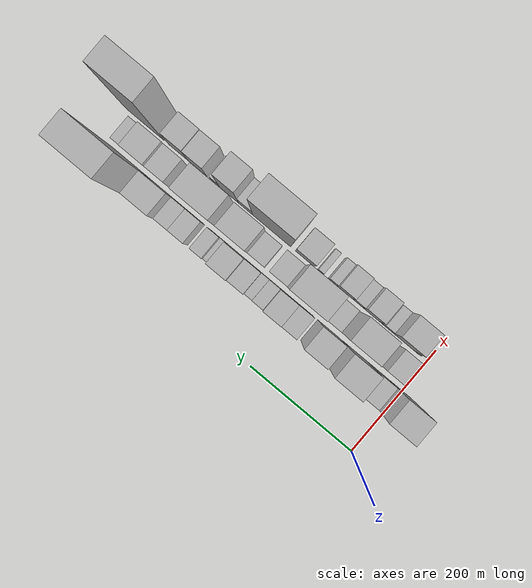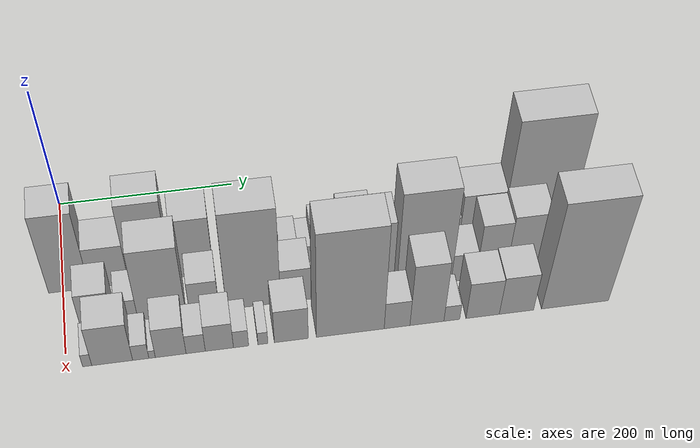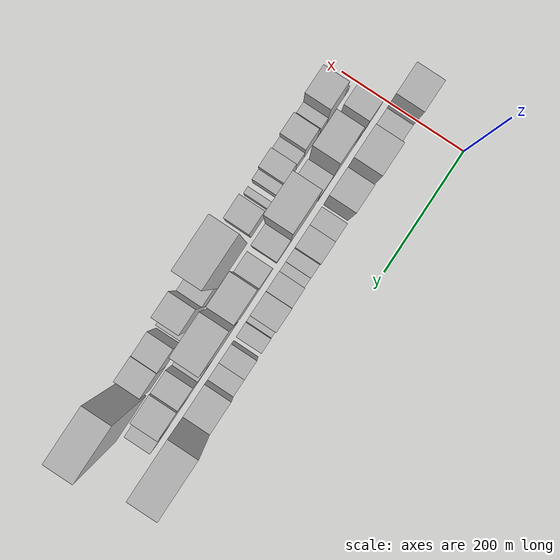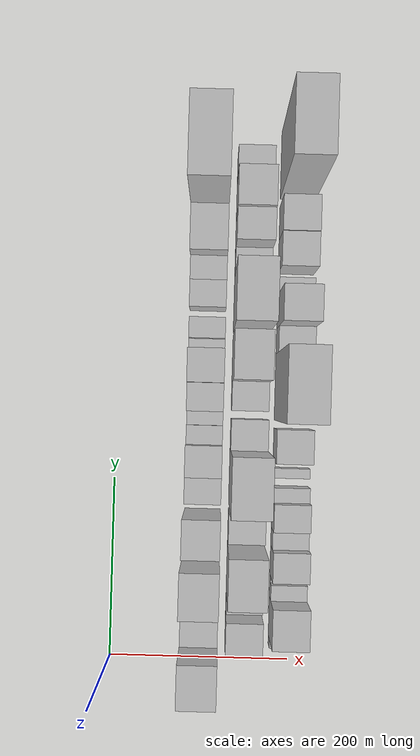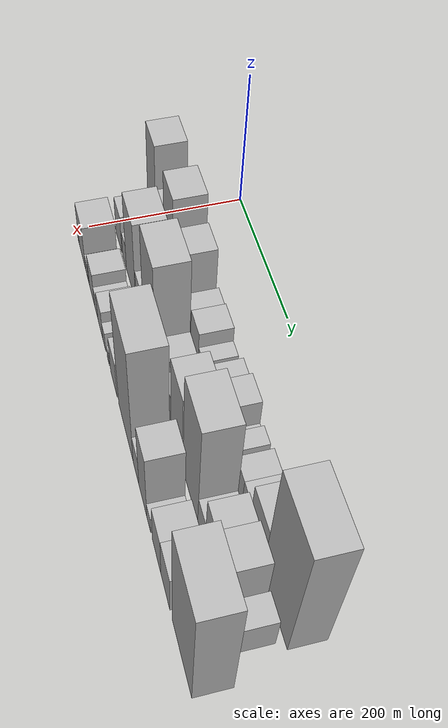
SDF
<sdf version="1.6">
 <world name="default">
  <model name="building_15">
   <static>1</static>
   <pose>100.0000 6.9200 0 0.000000 0.000000 0.000000</pose>
   <link name="link">
    <pose>0 0 72.00 0 0 0</pose>
    <collision name="collision"><geometry><box><size>40.0000 44.9962 144.0000</size></box></geometry></collision>
    <visual name="visual">
     <cast_shadows>0</cast_shadows>
     <geometry><box><size>40.0000 44.9962 144.0000</size></box></geometry>
     <material>
      <script>
       <uri>model://HANNAS_wall/materials/scripts</uri>
       <uri>model://HANNAS_wall/materials/textures</uri>
       <name>vrc/HANNAS_wall</name>
      </script>
     </material>
    </visual>
   </link>
  </model>
  <model name="building_16">
   <static>1</static>
   <pose>100.0000 51.2852 0 0.000000 0.000000 0.000000</pose>
   <link name="link">
    <pose>0 0 37.50 0 0 0</pose>
    <collision name="collision"><geometry><box><size>40.0000 43.7342 75.0000</size></box></geometry></collision>
    <visual name="visual">
     <cast_shadows>0</cast_shadows>
     <geometry><box><size>40.0000 43.7342 75.0000</size></box></geometry>
     <material>
      <script>
       <uri>model://HANNAS_wall/materials/scripts</uri>
       <uri>model://HANNAS_wall/materials/textures</uri>
       <name>vrc/HANNAS_wall</name>
      </script>
     </material>
    </visual>
   </link>
  </model>
  <model name="building_17">
   <static>1</static>
   <pose>100.0000 96.6755 0 0.000000 0.000000 0.000000</pose>
   <link name="link">
    <pose>0 0 73.50 0 0 0</pose>
    <collision name="collision"><geometry><box><size>40.0000 47.0465 147.0000</size></box></geometry></collision>
    <visual name="visual">
     <cast_shadows>0</cast_shadows>
     <geometry><box><size>40.0000 47.0465 147.0000</size></box></geometry>
     <material>
      <script>
       <uri>model://HANNAS_wall/materials/scripts</uri>
       <uri>model://HANNAS_wall/materials/textures</uri>
       <name>vrc/HANNAS_wall</name>
      </script>
     </material>
    </visual>
   </link>
  </model>
  <model name="building_18">
   <static>1</static>
   <pose>100.0000 146.9544 0 0.000000 0.000000 0.000000</pose>
   <link name="link">
    <pose>0 0 54.00 0 0 0</pose>
    <collision name="collision"><geometry><box><size>40.0000 41.5112 108.0000</size></box></geometry></collision>
    <visual name="visual">
     <cast_shadows>0</cast_shadows>
     <geometry><box><size>40.0000 41.5112 108.0000</size></box></geometry>
     <material>
      <script>
       <uri>model://HANNAS_wall/materials/scripts</uri>
       <uri>model://HANNAS_wall/materials/textures</uri>
       <name>vrc/HANNAS_wall</name>
      </script>
     </material>
    </visual>
   </link>
  </model>
  <model name="building_19">
   <static>1</static>
   <pose>100.0000 192.1107 0 0.000000 0.000000 0.000000</pose>
   <link name="link">
    <pose>0 0 27.00 0 0 0</pose>
    <collision name="collision"><geometry><box><size>40.0000 28.8016 54.0000</size></box></geometry></collision>
    <visual name="visual">
     <cast_shadows>0</cast_shadows>
     <geometry><box><size>40.0000 28.8016 54.0000</size></box></geometry>
     <material>
      <script>
       <uri>model://HANNAS_wall/materials/scripts</uri>
       <uri>model://HANNAS_wall/materials/textures</uri>
       <name>vrc/HANNAS_wall</name>
      </script>
     </material>
    </visual>
   </link>
  </model>
  <model name="building_20">
   <static>1</static>
   <pose>100.0000 223.8757 0 0.000000 0.000000 0.000000</pose>
   <link name="link">
    <pose>0 0 30.00 0 0 0</pose>
    <collision name="collision"><geometry><box><size>40.0000 34.7284 60.0000</size></box></geometry></collision>
    <visual name="visual">
     <cast_shadows>0</cast_shadows>
     <geometry><box><size>40.0000 34.7284 60.0000</size></box></geometry>
     <material>
      <script>
       <uri>model://HANNAS_wall/materials/scripts</uri>
       <uri>model://HANNAS_wall/materials/textures</uri>
       <name>vrc/HANNAS_wall</name>
      </script>
     </material>
    </visual>
   </link>
  </model>
  <model name="building_21">
   <static>1</static>
   <pose>100.0000 251.9050 0 0.000000 0.000000 0.000000</pose>
   <link name="link">
    <pose>0 0 18.00 0 0 0</pose>
    <collision name="collision"><geometry><box><size>40.0000 21.3302 36.0000</size></box></geometry></collision>
    <visual name="visual">
     <cast_shadows>0</cast_shadows>
     <geometry><box><size>40.0000 21.3302 36.0000</size></box></geometry>
     <material>
      <script>
       <uri>model://HANNAS_wall/materials/scripts</uri>
       <uri>model://HANNAS_wall/materials/textures</uri>
       <name>vrc/HANNAS_wall</name>
      </script>
     </material>
    </visual>
   </link>
  </model>
  <model name="building_22">
   <static>1</static>
   <pose>100.0000 270.2746 0 0.000000 0.000000 0.000000</pose>
   <link name="link">
    <pose>0 0 15.00 0 0 0</pose>
    <collision name="collision"><geometry><box><size>40.0000 15.4090 30.0000</size></box></geometry></collision>
    <visual name="visual">
     <cast_shadows>0</cast_shadows>
     <geometry><box><size>40.0000 15.4090 30.0000</size></box></geometry>
     <material>
      <script>
       <uri>model://HANNAS_wall/materials/scripts</uri>
       <uri>model://HANNAS_wall/materials/textures</uri>
       <name>vrc/HANNAS_wall</name>
      </script>
     </material>
    </visual>
   </link>
  </model>
  <model name="building_23">
   <static>1</static>
   <pose>100.0000 293.4356 0 0.000000 0.000000 0.000000</pose>
   <link name="link">
    <pose>0 0 27.00 0 0 0</pose>
    <collision name="collision"><geometry><box><size>40.0000 30.9131 54.0000</size></box></geometry></collision>
    <visual name="visual">
     <cast_shadows>0</cast_shadows>
     <geometry><box><size>40.0000 30.9131 54.0000</size></box></geometry>
     <material>
      <script>
       <uri>model://HANNAS_wall/materials/scripts</uri>
       <uri>model://HANNAS_wall/materials/textures</uri>
       <name>vrc/HANNAS_wall</name>
      </script>
     </material>
    </visual>
   </link>
  </model>
  <model name="building_24">
   <static>1</static>
   <pose>100.0000 327.2846 0 0.000000 0.000000 0.000000</pose>
   <link name="link">
    <pose>0 0 34.50 0 0 0</pose>
    <collision name="collision"><geometry><box><size>40.0000 36.7847 69.0000</size></box></geometry></collision>
    <visual name="visual">
     <cast_shadows>0</cast_shadows>
     <geometry><box><size>40.0000 36.7847 69.0000</size></box></geometry>
     <material>
      <script>
       <uri>model://HANNAS_wall/materials/scripts</uri>
       <uri>model://HANNAS_wall/materials/textures</uri>
       <name>vrc/HANNAS_wall</name>
      </script>
     </material>
    </visual>
   </link>
  </model>
  <model name="building_25">
   <static>1</static>
   <pose>100.0000 351.6811 0 0.000000 0.000000 0.000000</pose>
   <link name="link">
    <pose>0 0 13.50 0 0 0</pose>
    <collision name="collision"><geometry><box><size>40.0000 12.0084 27.0000</size></box></geometry></collision>
    <visual name="visual">
     <cast_shadows>0</cast_shadows>
     <geometry><box><size>40.0000 12.0084 27.0000</size></box></geometry>
     <material>
      <script>
       <uri>model://HANNAS_wall/materials/scripts</uri>
       <uri>model://HANNAS_wall/materials/textures</uri>
       <name>vrc/HANNAS_wall</name>
      </script>
     </material>
    </visual>
   </link>
  </model>
  <model name="building_26">
   <static>1</static>
   <pose>100.0000 369.1910 0 0.000000 0.000000 0.000000</pose>
   <link name="link">
    <pose>0 0 21.00 0 0 0</pose>
    <collision name="collision"><geometry><box><size>40.0000 23.0114 42.0000</size></box></geometry></collision>
    <visual name="visual">
     <cast_shadows>0</cast_shadows>
     <geometry><box><size>40.0000 23.0114 42.0000</size></box></geometry>
     <material>
      <script>
       <uri>model://HANNAS_wall/materials/scripts</uri>
       <uri>model://HANNAS_wall/materials/textures</uri>
       <name>vrc/HANNAS_wall</name>
      </script>
     </material>
    </visual>
   </link>
  </model>
  <model name="building_27">
   <static>1</static>
   <pose>100.0000 405.4047 0 0.000000 0.000000 0.000000</pose>
   <link name="link">
    <pose>0 0 25.50 0 0 0</pose>
    <collision name="collision"><geometry><box><size>40.0000 29.4160 51.0000</size></box></geometry></collision>
    <visual name="visual">
     <cast_shadows>0</cast_shadows>
     <geometry><box><size>40.0000 29.4160 51.0000</size></box></geometry>
     <material>
      <script>
       <uri>model://HANNAS_wall/materials/scripts</uri>
       <uri>model://HANNAS_wall/materials/textures</uri>
       <name>vrc/HANNAS_wall</name>
      </script>
     </material>
    </visual>
   </link>
  </model>
  <model name="building_28">
   <static>1</static>
   <pose>100.0000 433.1273 0 0.000000 0.000000 0.000000</pose>
   <link name="link">
    <pose>0 0 25.50 0 0 0</pose>
    <collision name="collision"><geometry><box><size>40.0000 26.0293 51.0000</size></box></geometry></collision>
    <visual name="visual">
     <cast_shadows>0</cast_shadows>
     <geometry><box><size>40.0000 26.0293 51.0000</size></box></geometry>
     <material>
      <script>
       <uri>model://HANNAS_wall/materials/scripts</uri>
       <uri>model://HANNAS_wall/materials/textures</uri>
       <name>vrc/HANNAS_wall</name>
      </script>
     </material>
    </visual>
   </link>
  </model>
  <model name="building_29">
   <static>1</static>
   <pose>100.0000 470.3106 0 0.000000 0.000000 0.000000</pose>
   <link name="link">
    <pose>0 0 45.00 0 0 0</pose>
    <collision name="collision"><geometry><box><size>40.0000 48.3374 90.0000</size></box></geometry></collision>
    <visual name="visual">
     <cast_shadows>0</cast_shadows>
     <geometry><box><size>40.0000 48.3374 90.0000</size></box></geometry>
     <material>
      <script>
       <uri>model://HANNAS_wall/materials/scripts</uri>
       <uri>model://HANNAS_wall/materials/textures</uri>
       <name>vrc/HANNAS_wall</name>
      </script>
     </material>
    </visual>
   </link>
  </model>
  <model name="building_30">
   <static>1</static>
   <pose>100.0000 533.9974 0 0.000000 0.000000 0.000000</pose>
   <link name="link">
    <pose>0 0 105.00 0 0 0</pose>
    <collision name="collision"><geometry><box><size>40.0000 79.0361 210.0000</size></box></geometry></collision>
    <visual name="visual">
     <cast_shadows>0</cast_shadows>
     <geometry><box><size>40.0000 79.0361 210.0000</size></box></geometry>
     <material>
      <script>
       <uri>model://HANNAS_wall/materials/scripts</uri>
       <uri>model://HANNAS_wall/materials/textures</uri>
       <name>vrc/HANNAS_wall</name>
      </script>
     </material>
    </visual>
   </link>
  </model>
  <model name="building_46">
   <static>1</static>
   <pose>149.0000 35.1928 0 0.000000 0.000000 0.000000</pose>
   <link name="link">
    <pose>0 0 31.50 0 0 0</pose>
    <collision name="collision"><geometry><box><size>40.0000 35.3323 63.0000</size></box></geometry></collision>
    <visual name="visual">
     <cast_shadows>0</cast_shadows>
     <geometry><box><size>40.0000 35.3323 63.0000</size></box></geometry>
     <material>
      <script>
       <uri>model://HANNAS_wall/materials/scripts</uri>
       <uri>model://HANNAS_wall/materials/textures</uri>
       <name>vrc/HANNAS_wall</name>
      </script>
     </material>
    </visual>
   </link>
  </model>
  <model name="building_47">
   <static>1</static>
   <pose>149.0000 68.9886 0 0.000000 0.000000 0.000000</pose>
   <link name="link">
    <pose>0 0 21.00 0 0 0</pose>
    <collision name="collision"><geometry><box><size>40.0000 22.2593 42.0000</size></box></geometry></collision>
    <visual name="visual">
     <cast_shadows>0</cast_shadows>
     <geometry><box><size>40.0000 22.2593 42.0000</size></box></geometry>
     <material>
      <script>
       <uri>model://HANNAS_wall/materials/scripts</uri>
       <uri>model://HANNAS_wall/materials/textures</uri>
       <name>vrc/HANNAS_wall</name>
      </script>
     </material>
    </visual>
   </link>
  </model>
  <model name="building_48">
   <static>1</static>
   <pose>149.0000 106.3299 0 0.000000 0.000000 0.000000</pose>
   <link name="link">
    <pose>0 0 66.00 0 0 0</pose>
    <collision name="collision"><geometry><box><size>40.0000 52.4235 132.0000</size></box></geometry></collision>
    <visual name="visual">
     <cast_shadows>0</cast_shadows>
     <geometry><box><size>40.0000 52.4235 132.0000</size></box></geometry>
     <material>
      <script>
       <uri>model://HANNAS_wall/materials/scripts</uri>
       <uri>model://HANNAS_wall/materials/textures</uri>
       <name>vrc/HANNAS_wall</name>
      </script>
     </material>
    </visual>
   </link>
  </model>
  <model name="building_49">
   <static>1</static>
   <pose>149.0000 152.7548 0 0.000000 0.000000 0.000000</pose>
   <link name="link">
    <pose>0 0 30.00 0 0 0</pose>
    <collision name="collision"><geometry><box><size>40.0000 32.4263 60.0000</size></box></geometry></collision>
    <visual name="visual">
     <cast_shadows>0</cast_shadows>
     <geometry><box><size>40.0000 32.4263 60.0000</size></box></geometry>
     <material>
      <script>
       <uri>model://HANNAS_wall/materials/scripts</uri>
       <uri>model://HANNAS_wall/materials/textures</uri>
       <name>vrc/HANNAS_wall</name>
      </script>
     </material>
    </visual>
   </link>
  </model>
  <model name="building_50">
   <static>1</static>
   <pose>149.0000 206.9323 0 0.000000 0.000000 0.000000</pose>
   <link name="link">
    <pose>0 0 90.00 0 0 0</pose>
    <collision name="collision"><geometry><box><size>40.0000 59.9288 180.0000</size></box></geometry></collision>
    <visual name="visual">
     <cast_shadows>0</cast_shadows>
     <geometry><box><size>40.0000 59.9288 180.0000</size></box></geometry>
     <material>
      <script>
       <uri>model://HANNAS_wall/materials/scripts</uri>
       <uri>model://HANNAS_wall/materials/textures</uri>
       <name>vrc/HANNAS_wall</name>
      </script>
     </material>
    </visual>
   </link>
  </model>
  <model name="building_51">
   <static>1</static>
   <pose>149.0000 253.7500 0 0.000000 0.000000 0.000000</pose>
   <link name="link">
    <pose>0 0 31.50 0 0 0</pose>
    <collision name="collision"><geometry><box><size>40.0000 33.7065 63.0000</size></box></geometry></collision>
    <visual name="visual">
     <cast_shadows>0</cast_shadows>
     <geometry><box><size>40.0000 33.7065 63.0000</size></box></geometry>
     <material>
      <script>
       <uri>model://HANNAS_wall/materials/scripts</uri>
       <uri>model://HANNAS_wall/materials/textures</uri>
       <name>vrc/HANNAS_wall</name>
      </script>
     </material>
    </visual>
   </link>
  </model>
  <model name="building_52">
   <static>1</static>
   <pose>149.0000 295.5538 0 0.000000 0.000000 0.000000</pose>
   <link name="link">
    <pose>0 0 28.50 0 0 0</pose>
    <collision name="collision"><geometry><box><size>40.0000 31.9012 57.0000</size></box></geometry></collision>
    <visual name="visual">
     <cast_shadows>0</cast_shadows>
     <geometry><box><size>40.0000 31.9012 57.0000</size></box></geometry>
     <material>
      <script>
       <uri>model://HANNAS_wall/materials/scripts</uri>
       <uri>model://HANNAS_wall/materials/textures</uri>
       <name>vrc/HANNAS_wall</name>
      </script>
     </material>
    </visual>
   </link>
  </model>
  <model name="building_53">
   <static>1</static>
   <pose>149.0000 336.9416 0 0.000000 0.000000 0.000000</pose>
   <link name="link">
    <pose>0 0 64.50 0 0 0</pose>
    <collision name="collision"><geometry><box><size>40.0000 50.8743 129.0000</size></box></geometry></collision>
    <visual name="visual">
     <cast_shadows>0</cast_shadows>
     <geometry><box><size>40.0000 50.8743 129.0000</size></box></geometry>
     <material>
      <script>
       <uri>model://HANNAS_wall/materials/scripts</uri>
       <uri>model://HANNAS_wall/materials/textures</uri>
       <name>vrc/HANNAS_wall</name>
      </script>
     </material>
    </visual>
   </link>
  </model>
  <model name="building_54">
   <static>1</static>
   <pose>149.0000 397.1230 0 0.000000 0.000000 0.000000</pose>
   <link name="link">
    <pose>0 0 88.50 0 0 0</pose>
    <collision name="collision"><geometry><box><size>40.0000 61.4886 177.0000</size></box></geometry></collision>
    <visual name="visual">
     <cast_shadows>0</cast_shadows>
     <geometry><box><size>40.0000 61.4886 177.0000</size></box></geometry>
     <material>
      <script>
       <uri>model://HANNAS_wall/materials/scripts</uri>
       <uri>model://HANNAS_wall/materials/textures</uri>
       <name>vrc/HANNAS_wall</name>
      </script>
     </material>
    </visual>
   </link>
  </model>
  <model name="building_55">
   <static>1</static>
   <pose>149.0000 441.8841 0 0.000000 0.000000 0.000000</pose>
   <link name="link">
    <pose>0 0 25.50 0 0 0</pose>
    <collision name="collision"><geometry><box><size>40.0000 28.0337 51.0000</size></box></geometry></collision>
    <visual name="visual">
     <cast_shadows>0</cast_shadows>
     <geometry><box><size>40.0000 28.0337 51.0000</size></box></geometry>
     <material>
      <script>
       <uri>model://HANNAS_wall/materials/scripts</uri>
       <uri>model://HANNAS_wall/materials/textures</uri>
       <name>vrc/HANNAS_wall</name>
      </script>
     </material>
    </visual>
   </link>
  </model>
  <model name="building_56">
   <static>1</static>
   <pose>149.0000 472.7387 0 0.000000 0.000000 0.000000</pose>
   <link name="link">
    <pose>0 0 51.00 0 0 0</pose>
    <collision name="collision"><geometry><box><size>40.0000 33.6756 102.0000</size></box></geometry></collision>
    <visual name="visual">
     <cast_shadows>0</cast_shadows>
     <geometry><box><size>40.0000 33.6756 102.0000</size></box></geometry>
     <material>
      <script>
       <uri>model://HANNAS_wall/materials/scripts</uri>
       <uri>model://HANNAS_wall/materials/textures</uri>
       <name>vrc/HANNAS_wall</name>
      </script>
     </material>
    </visual>
   </link>
  </model>
  <model name="building_57">
   <static>1</static>
   <pose>149.0000 510.3252 0 0.000000 0.000000 0.000000</pose>
   <link name="link">
    <pose>0 0 55.50 0 0 0</pose>
    <collision name="collision"><geometry><box><size>40.0000 41.4974 111.0000</size></box></geometry></collision>
    <visual name="visual">
     <cast_shadows>0</cast_shadows>
     <geometry><box><size>40.0000 41.4974 111.0000</size></box></geometry>
     <material>
      <script>
       <uri>model://HANNAS_wall/materials/scripts</uri>
       <uri>model://HANNAS_wall/materials/textures</uri>
       <name>vrc/HANNAS_wall</name>
      </script>
     </material>
    </visual>
   </link>
  </model>
  <model name="building_58">
   <static>1</static>
   <pose>149.0000 550.0989 0 0.000000 0.000000 0.000000</pose>
   <link name="link">
    <pose>0 0 28.50 0 0 0</pose>
    <collision name="collision"><geometry><box><size>40.0000 30.0500 57.0000</size></box></geometry></collision>
    <visual name="visual">
     <cast_shadows>0</cast_shadows>
     <geometry><box><size>40.0000 30.0500 57.0000</size></box></geometry>
     <material>
      <script>
       <uri>model://HANNAS_wall/materials/scripts</uri>
       <uri>model://HANNAS_wall/materials/textures</uri>
       <name>vrc/HANNAS_wall</name>
      </script>
     </material>
    </visual>
   </link>
  </model>
  <model name="building_75">
   <static>1</static>
   <pose>198.0000 22.4818 0 0.000000 0.000000 0.000000</pose>
   <link name="link">
    <pose>0 0 12.00 0 0 0</pose>
    <collision name="collision"><geometry><box><size>40.0000 9.7204 24.0000</size></box></geometry></collision>
    <visual name="visual">
     <cast_shadows>0</cast_shadows>
     <geometry><box><size>40.0000 9.7204 24.0000</size></box></geometry>
     <material>
      <script>
       <uri>model://HANNAS_wall/materials/scripts</uri>
       <uri>model://HANNAS_wall/materials/textures</uri>
       <name>vrc/HANNAS_wall</name>
      </script>
     </material>
    </visual>
   </link>
  </model>
  <model name="building_76">
   <static>1</static>
   <pose>198.0000 49.1671 0 0.000000 0.000000 0.000000</pose>
   <link name="link">
    <pose>0 0 37.50 0 0 0</pose>
    <collision name="collision"><geometry><box><size>40.0000 43.6503 75.0000</size></box></geometry></collision>
    <visual name="visual">
     <cast_shadows>0</cast_shadows>
     <geometry><box><size>40.0000 43.6503 75.0000</size></box></geometry>
     <material>
      <script>
       <uri>model://HANNAS_wall/materials/scripts</uri>
       <uri>model://HANNAS_wall/materials/textures</uri>
       <name>vrc/HANNAS_wall</name>
      </script>
     </material>
    </visual>
   </link>
  </model>
  <model name="building_77">
   <static>1</static>
   <pose>198.0000 79.6805 0 0.000000 0.000000 0.000000</pose>
   <link name="link">
    <pose>0 0 15.00 0 0 0</pose>
    <collision name="collision"><geometry><box><size>40.0000 17.3765 30.0000</size></box></geometry></collision>
    <visual name="visual">
     <cast_shadows>0</cast_shadows>
     <geometry><box><size>40.0000 17.3765 30.0000</size></box></geometry>
     <material>
      <script>
       <uri>model://HANNAS_wall/materials/scripts</uri>
       <uri>model://HANNAS_wall/materials/textures</uri>
       <name>vrc/HANNAS_wall</name>
      </script>
     </material>
    </visual>
   </link>
  </model>
  <model name="building_78">
   <static>1</static>
   <pose>198.0000 91.8149 0 0.000000 0.000000 0.000000</pose>
   <link name="link">
    <pose>0 0 7.50 0 0 0</pose>
    <collision name="collision"><geometry><box><size>40.0000 6.8923 15.0000</size></box></geometry></collision>
    <visual name="visual">
     <cast_shadows>0</cast_shadows>
     <geometry><box><size>40.0000 6.8923 15.0000</size></box></geometry>
     <material>
      <script>
       <uri>model://HANNAS_wall/materials/scripts</uri>
       <uri>model://HANNAS_wall/materials/textures</uri>
       <name>vrc/HANNAS_wall</name>
      </script>
     </material>
    </visual>
   </link>
  </model>
  <model name="building_79">
   <static>1</static>
   <pose>198.0000 111.8099 0 0.000000 0.000000 0.000000</pose>
   <link name="link">
    <pose>0 0 28.50 0 0 0</pose>
    <collision name="collision"><geometry><box><size>40.0000 33.0977 57.0000</size></box></geometry></collision>
    <visual name="visual">
     <cast_shadows>0</cast_shadows>
     <geometry><box><size>40.0000 33.0977 57.0000</size></box></geometry>
     <material>
      <script>
       <uri>model://HANNAS_wall/materials/scripts</uri>
       <uri>model://HANNAS_wall/materials/textures</uri>
       <name>vrc/HANNAS_wall</name>
      </script>
     </material>
    </visual>
   </link>
  </model>
  <model name="building_80">
   <static>1</static>
   <pose>198.0000 138.7290 0 0.000000 0.000000 0.000000</pose>
   <link name="link">
    <pose>0 0 18.00 0 0 0</pose>
    <collision name="collision"><geometry><box><size>40.0000 20.7405 36.0000</size></box></geometry></collision>
    <visual name="visual">
     <cast_shadows>0</cast_shadows>
     <geometry><box><size>40.0000 20.7405 36.0000</size></box></geometry>
     <material>
      <script>
       <uri>model://HANNAS_wall/materials/scripts</uri>
       <uri>model://HANNAS_wall/materials/textures</uri>
       <name>vrc/HANNAS_wall</name>
      </script>
     </material>
    </visual>
   </link>
  </model>
  <model name="building_81">
   <static>1</static>
   <pose>198.0000 164.2740 0 0.000000 0.000000 0.000000</pose>
   <link name="link">
    <pose>0 0 25.50 0 0 0</pose>
    <collision name="collision"><geometry><box><size>40.0000 30.3495 51.0000</size></box></geometry></collision>
    <visual name="visual">
     <cast_shadows>0</cast_shadows>
     <geometry><box><size>40.0000 30.3495 51.0000</size></box></geometry>
     <material>
      <script>
       <uri>model://HANNAS_wall/materials/scripts</uri>
       <uri>model://HANNAS_wall/materials/textures</uri>
       <name>vrc/HANNAS_wall</name>
      </script>
     </material>
    </visual>
   </link>
  </model>
  <model name="building_82">
   <static>1</static>
   <pose>198.0000 187.7028 0 0.000000 0.000000 0.000000</pose>
   <link name="link">
    <pose>0 0 16.50 0 0 0</pose>
    <collision name="collision"><geometry><box><size>40.0000 16.5081 33.0000</size></box></geometry></collision>
    <visual name="visual">
     <cast_shadows>0</cast_shadows>
     <geometry><box><size>40.0000 16.5081 33.0000</size></box></geometry>
     <material>
      <script>
       <uri>model://HANNAS_wall/materials/scripts</uri>
       <uri>model://HANNAS_wall/materials/textures</uri>
       <name>vrc/HANNAS_wall</name>
      </script>
     </material>
    </visual>
   </link>
  </model>
  <model name="building_83">
   <static>1</static>
   <pose>198.0000 211.4115 0 0.000000 0.000000 0.000000</pose>
   <link name="link">
    <pose>0 0 12.00 0 0 0</pose>
    <collision name="collision"><geometry><box><size>40.0000 10.9093 24.0000</size></box></geometry></collision>
    <visual name="visual">
     <cast_shadows>0</cast_shadows>
     <geometry><box><size>40.0000 10.9093 24.0000</size></box></geometry>
     <material>
      <script>
       <uri>model://HANNAS_wall/materials/scripts</uri>
       <uri>model://HANNAS_wall/materials/textures</uri>
       <name>vrc/HANNAS_wall</name>
      </script>
     </material>
    </visual>
   </link>
  </model>
  <model name="building_84">
   <static>1</static>
   <pose>198.0000 242.3283 0 0.000000 0.000000 0.000000</pose>
   <link name="link">
    <pose>0 0 31.50 0 0 0</pose>
    <collision name="collision"><geometry><box><size>40.0000 36.9243 63.0000</size></box></geometry></collision>
    <visual name="visual">
     <cast_shadows>0</cast_shadows>
     <geometry><box><size>40.0000 36.9243 63.0000</size></box></geometry>
     <material>
      <script>
       <uri>model://HANNAS_wall/materials/scripts</uri>
       <uri>model://HANNAS_wall/materials/textures</uri>
       <name>vrc/HANNAS_wall</name>
      </script>
     </material>
    </visual>
   </link>
  </model>
  <model name="building_85">
   <static>1</static>
   <pose>198.0000 306.9868 0 0.000000 0.000000 0.000000</pose>
   <link name="link">
    <pose>0 0 99.00 0 0 0</pose>
    <collision name="collision"><geometry><box><size>40.0000 74.3928 198.0000</size></box></geometry></collision>
    <visual name="visual">
     <cast_shadows>0</cast_shadows>
     <geometry><box><size>40.0000 74.3928 198.0000</size></box></geometry>
     <material>
      <script>
       <uri>model://HANNAS_wall/materials/scripts</uri>
       <uri>model://HANNAS_wall/materials/textures</uri>
       <name>vrc/HANNAS_wall</name>
      </script>
     </material>
    </visual>
   </link>
  </model>
  <model name="building_86">
   <static>1</static>
   <pose>198.0000 358.3846 0 0.000000 0.000000 0.000000</pose>
   <link name="link">
    <pose>0 0 25.50 0 0 0</pose>
    <collision name="collision"><geometry><box><size>40.0000 28.4028 51.0000</size></box></geometry></collision>
    <visual name="visual">
     <cast_shadows>0</cast_shadows>
     <geometry><box><size>40.0000 28.4028 51.0000</size></box></geometry>
     <material>
      <script>
       <uri>model://HANNAS_wall/materials/scripts</uri>
       <uri>model://HANNAS_wall/materials/textures</uri>
       <name>vrc/HANNAS_wall</name>
      </script>
     </material>
    </visual>
   </link>
  </model>
  <model name="building_87">
   <static>1</static>
   <pose>198.0000 391.3989 0 0.000000 0.000000 0.000000</pose>
   <link name="link">
    <pose>0 0 58.50 0 0 0</pose>
    <collision name="collision"><geometry><box><size>40.0000 37.6257 117.0000</size></box></geometry></collision>
    <visual name="visual">
     <cast_shadows>0</cast_shadows>
     <geometry><box><size>40.0000 37.6257 117.0000</size></box></geometry>
     <material>
      <script>
       <uri>model://HANNAS_wall/materials/scripts</uri>
       <uri>model://HANNAS_wall/materials/textures</uri>
       <name>vrc/HANNAS_wall</name>
      </script>
     </material>
    </visual>
   </link>
  </model>
  <model name="building_88">
   <static>1</static>
   <pose>198.0000 419.0307 0 0.000000 0.000000 0.000000</pose>
   <link name="link">
    <pose>0 0 15.00 0 0 0</pose>
    <collision name="collision"><geometry><box><size>40.0000 17.6379 30.0000</size></box></geometry></collision>
    <visual name="visual">
     <cast_shadows>0</cast_shadows>
     <geometry><box><size>40.0000 17.6379 30.0000</size></box></geometry>
     <material>
      <script>
       <uri>model://HANNAS_wall/materials/scripts</uri>
       <uri>model://HANNAS_wall/materials/textures</uri>
       <name>vrc/HANNAS_wall</name>
      </script>
     </material>
    </visual>
   </link>
  </model>
  <model name="building_89">
   <static>1</static>
   <pose>198.0000 453.3799 0 0.000000 0.000000 0.000000</pose>
   <link name="link">
    <pose>0 0 34.50 0 0 0</pose>
    <collision name="collision"><geometry><box><size>40.0000 37.0603 69.0000</size></box></geometry></collision>
    <visual name="visual">
     <cast_shadows>0</cast_shadows>
     <geometry><box><size>40.0000 37.0603 69.0000</size></box></geometry>
     <material>
      <script>
       <uri>model://HANNAS_wall/materials/scripts</uri>
       <uri>model://HANNAS_wall/materials/textures</uri>
       <name>vrc/HANNAS_wall</name>
      </script>
     </material>
    </visual>
   </link>
  </model>
  <model name="building_90">
   <static>1</static>
   <pose>198.0000 491.1298 0 0.000000 0.000000 0.000000</pose>
   <link name="link">
    <pose>0 0 36.00 0 0 0</pose>
    <collision name="collision"><geometry><box><size>40.0000 38.4395 72.0000</size></box></geometry></collision>
    <visual name="visual">
     <cast_shadows>0</cast_shadows>
     <geometry><box><size>40.0000 38.4395 72.0000</size></box></geometry>
     <material>
      <script>
       <uri>model://HANNAS_wall/materials/scripts</uri>
       <uri>model://HANNAS_wall/materials/textures</uri>
       <name>vrc/HANNAS_wall</name>
      </script>
     </material>
    </visual>
   </link>
  </model>
  <model name="building_91">
   <static>1</static>
   <pose>198.0000 557.0991 0 0.000000 0.000000 0.000000</pose>
   <link name="link">
    <pose>0 0 99.00 0 0 0</pose>
    <collision name="collision"><geometry><box><size>40.0000 75.4991 198.0000</size></box></geometry></collision>
    <visual name="visual">
     <cast_shadows>0</cast_shadows>
     <geometry><box><size>40.0000 75.4991 198.0000</size></box></geometry>
     <material>
      <script>
       <uri>model://HANNAS_wall/materials/scripts</uri>
       <uri>model://HANNAS_wall/materials/textures</uri>
       <name>vrc/HANNAS_wall</name>
      </script>
     </material>
    </visual>
   </link>
  </model>
 </world>
</sdf>
